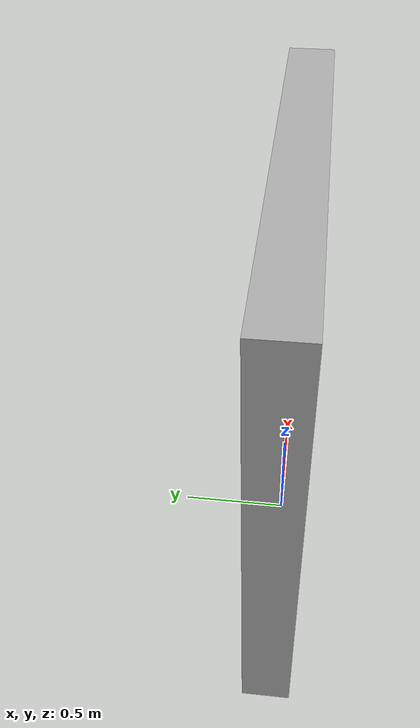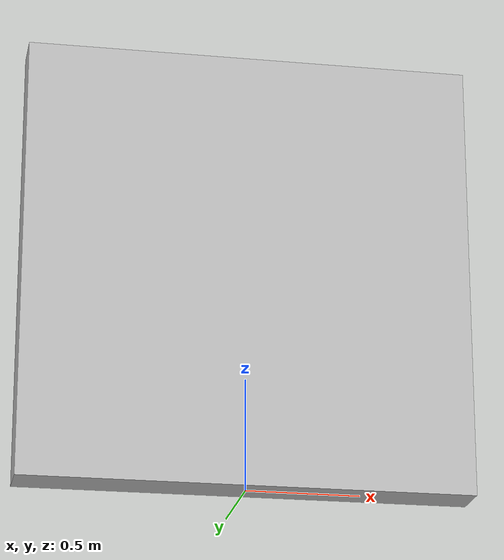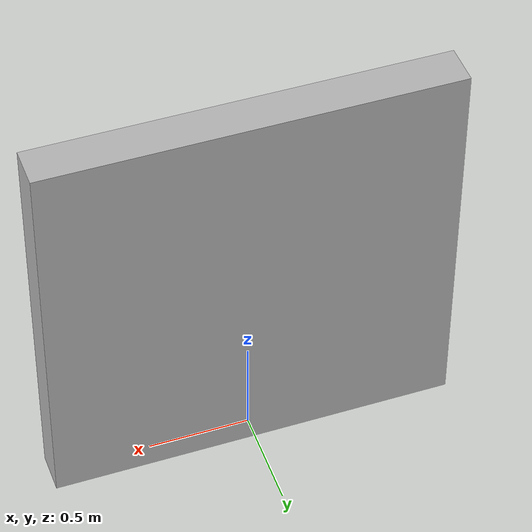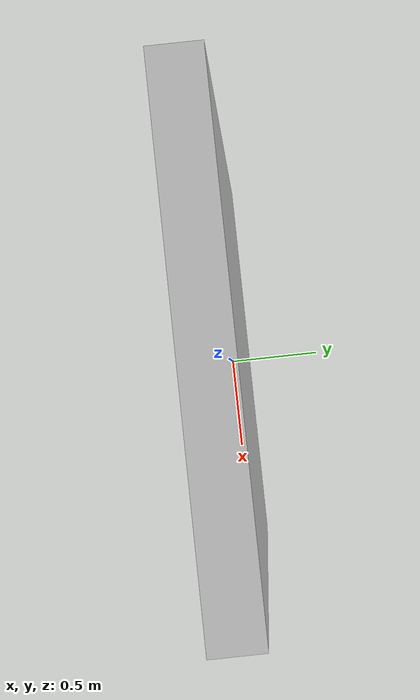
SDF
<?xml version="1.0"?>
<sdf version="1.10">
  <model name="wall_2m">
    <static>true</static>
    <link name="wall_link">
      <visual name="wall_visual">
        <geometry>
          <mesh>
            <uri>model://wall_2m/meshes/wall_2m.dae</uri>
          </mesh>
        </geometry>
      </visual>

      <collision name="wall_collision">
        <pose>0 0 1 0 0 0</pose>
        <geometry>
          <box>
            <size>2 0.2 2</size>
          </box>
        </geometry>
      </collision>
    </link>
  </model>
</sdf>
